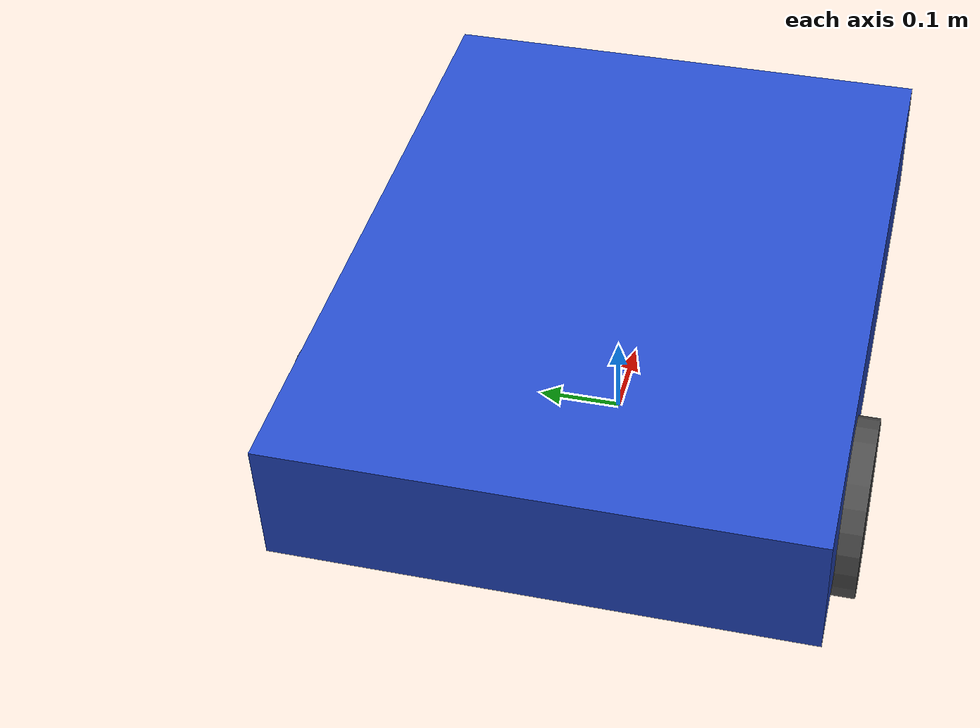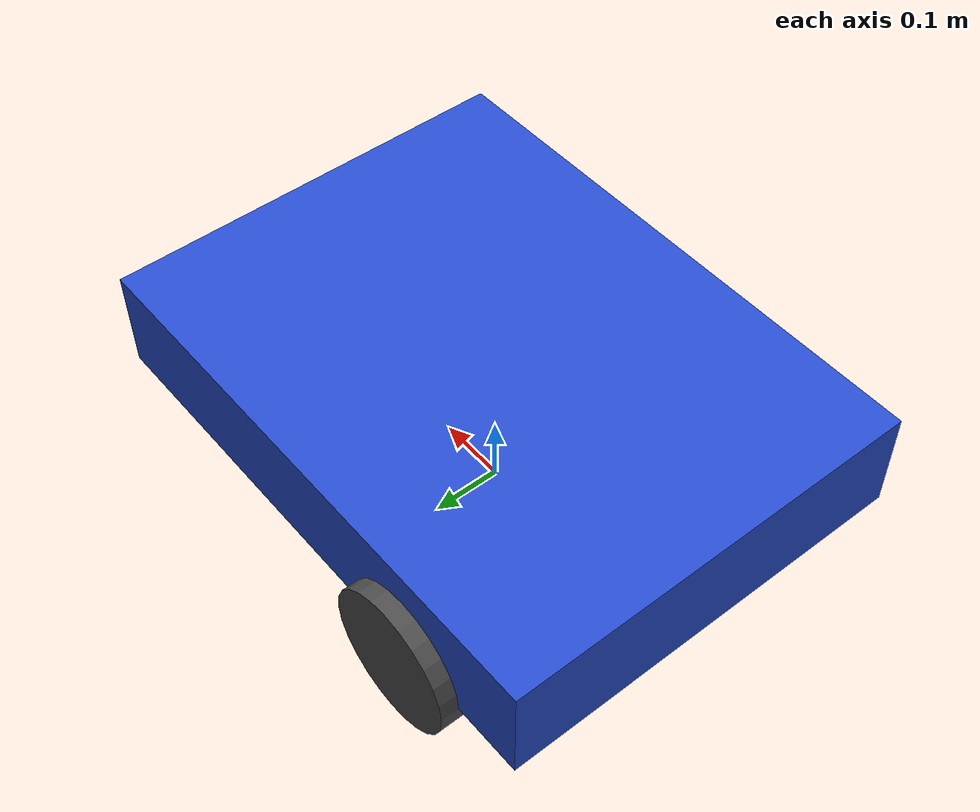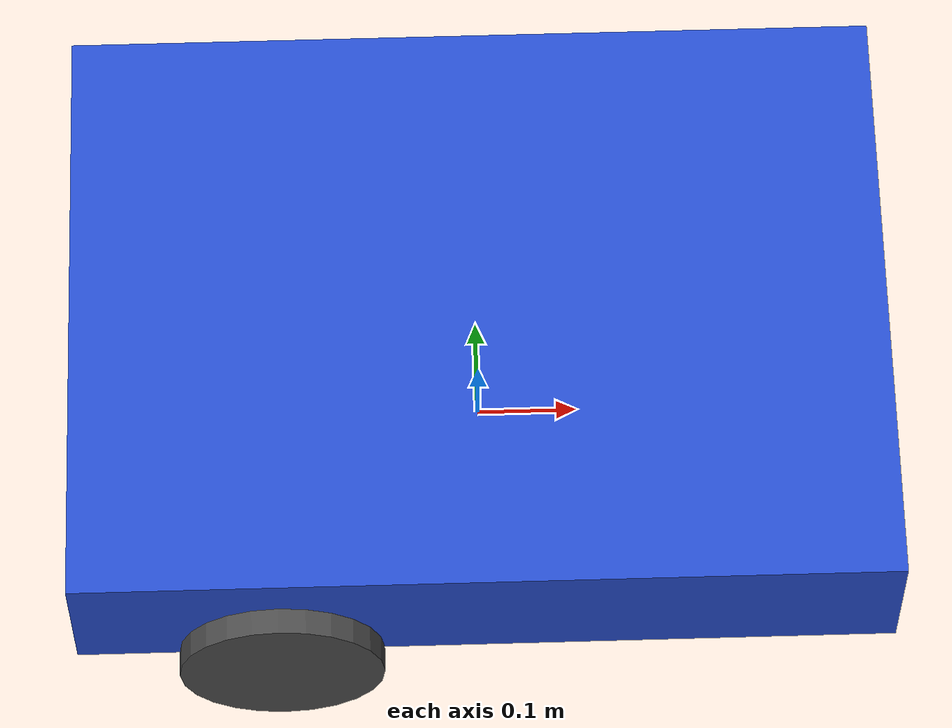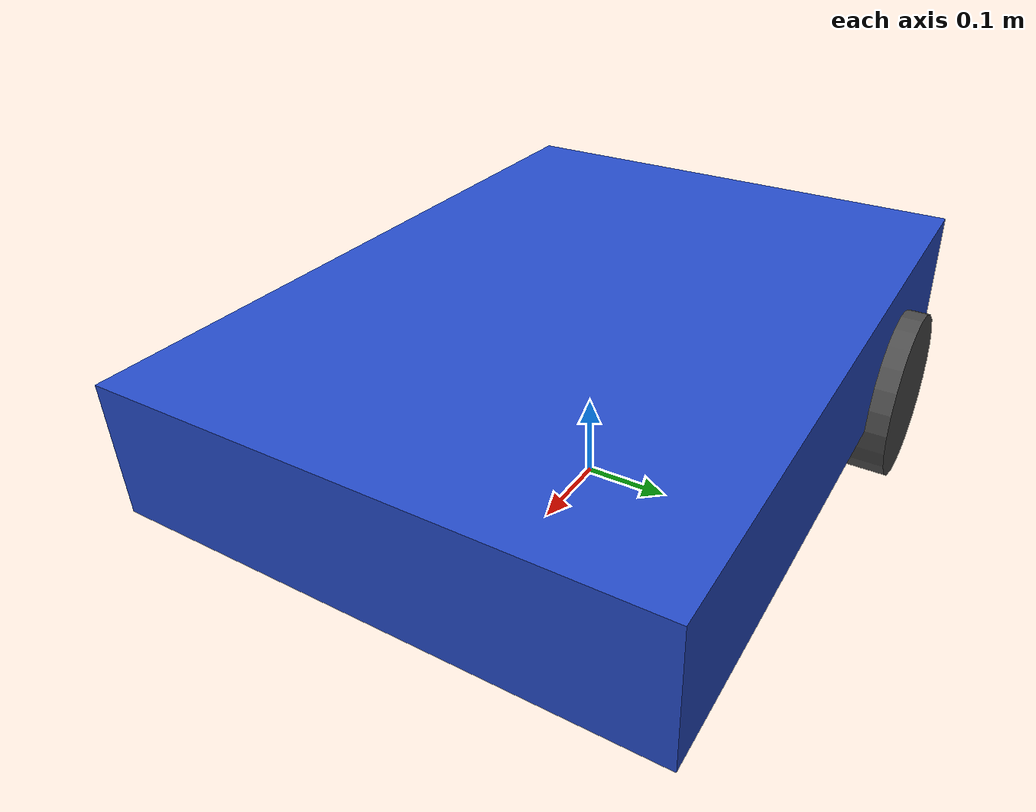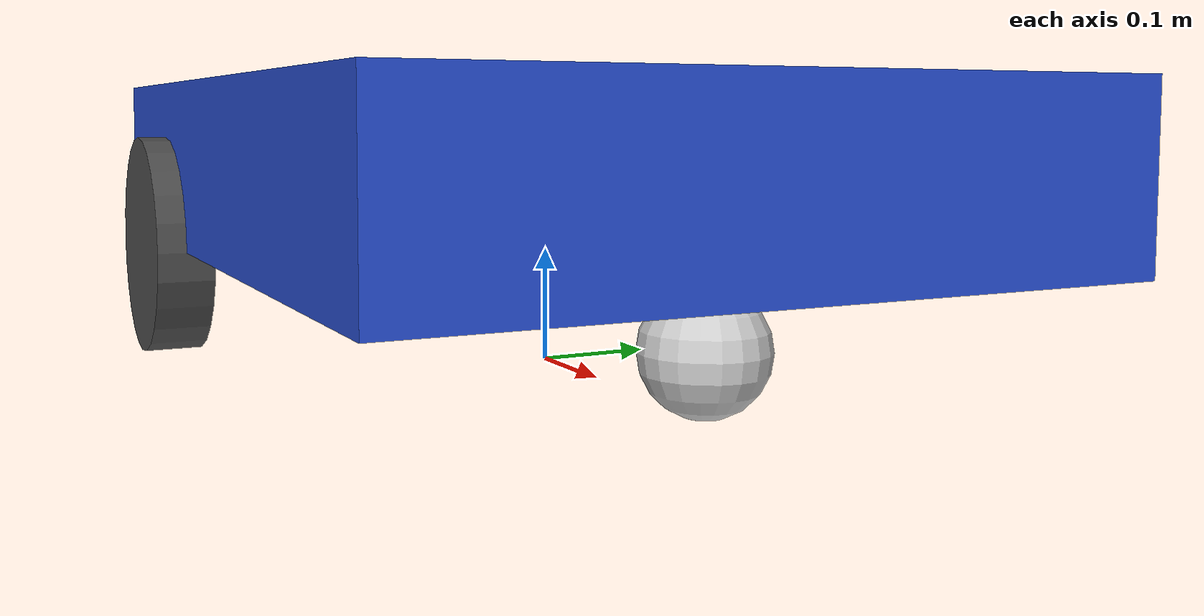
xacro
<?xml version="1.0"?>
<robot xmlns:xacro="http://www.ros.org/wiki/xacro">

  <!-- Properties -->
  <xacro:property name="chassis_length" value="0.8"/>
  <xacro:property name="chassis_width" value="0.6"/>
  <xacro:property name="chassis_height" value="0.15"/>
  <xacro:property name="chassis_mass" value="20.0"/>

  <xacro:property name="wheel_radius" value="0.1"/>
  <xacro:property name="wheel_width" value="0.05"/>
  <xacro:property name="wheel_mass" value="1.0"/>
  <xacro:property name="track_width" value="0.55"/>

  <xacro:property name="caster_radius" value="0.05"/>
  <xacro:property name="caster_mass" value="0.5"/>

  <!-- Inertia macros -->
  <xacro:macro name="box_inertia" params="m x y z">
    <inertial>
      <mass value="${m}"/>
      <inertia ixx="${m*(y*y+z*z)/12}" ixy="0" ixz="0"
               iyy="${m*(x*x+z*z)/12}" iyz="0"
               izz="${m*(x*x+y*y)/12}"/>
    </inertial>
  </xacro:macro>

  <xacro:macro name="cylinder_inertia" params="m r l">
    <inertial>
      <mass value="${m}"/>
      <inertia ixx="${m*(3*r*r+l*l)/12}" ixy="0" ixz="0"
               iyy="${m*(3*r*r+l*l)/12}" iyz="0"
               izz="${m*r*r/2}"/>
    </inertial>
  </xacro:macro>

  <xacro:macro name="sphere_inertia" params="m r">
    <inertial>
      <mass value="${m}"/>
      <inertia ixx="${2*m*r*r/5}" ixy="0" ixz="0"
               iyy="${2*m*r*r/5}" iyz="0"
               izz="${2*m*r*r/5}"/>
    </inertial>
  </xacro:macro>

  <!-- Base footprint (on the ground) -->
  <link name="base_footprint"/>

  <joint name="base_joint" type="fixed">
    <parent link="base_footprint"/>
    <child link="base_link"/>
    <origin xyz="0 0 ${wheel_radius}" rpy="0 0 0"/>
  </joint>

  <!-- Chassis -->
  <link name="base_link">
    <visual>
      <geometry>
        <box size="${chassis_length} ${chassis_width} ${chassis_height}"/>
      </geometry>
      <origin xyz="0 0 ${chassis_height/2}" rpy="0 0 0"/>
      <material name="blue"/>
    </visual>
    <collision>
      <geometry>
        <box size="${chassis_length} ${chassis_width} ${chassis_height}"/>
      </geometry>
      <origin xyz="0 0 ${chassis_height/2}" rpy="0 0 0"/>
    </collision>
    <xacro:box_inertia m="${chassis_mass}" x="${chassis_length}" y="${chassis_width}" z="${chassis_height}"/>
  </link>

  <!-- Wheel macro -->
  <xacro:macro name="drive_wheel" params="prefix y_offset">
    <link name="${prefix}_wheel_link">
      <visual>
        <geometry>
          <cylinder radius="${wheel_radius}" length="${wheel_width}"/>
        </geometry>
        <material name="dark_grey"/>
      </visual>
      <collision>
        <geometry>
          <cylinder radius="${wheel_radius}" length="${wheel_width}"/>
        </geometry>
        <surface>
          <friction>
            <ode>
              <mu>1.0</mu>
              <mu2>1.0</mu2>
            </ode>
          </friction>
        </surface>
      </collision>
      <xacro:cylinder_inertia m="${wheel_mass}" r="${wheel_radius}" l="${wheel_width}"/>
    </link>

    <joint name="${prefix}_wheel_joint" type="continuous">
      <parent link="base_link"/>
      <child link="${prefix}_wheel_link"/>
      <origin xyz="${-chassis_length/4} ${y_offset} 0" rpy="${-pi/2} 0 0"/>
      <axis xyz="0 0 1"/>
      <dynamics damping="0.1" friction="0.1"/>
    </joint>

    <!-- collision sensors on wheels to detect the lane line crossing-->
    <gazebo reference="${prefix}_wheel_link">
      <sensor name="${prefix}_wheel_sensor" type="contact">
        <topic>/${prefix}_wheel_sensor</topic>
        <always_on>true</always_on>
        <update_rate>50</update_rate>
        <contact>
          <collision>${prefix}_wheel_link_collision</collision>
        </contact>
      </sensor>
    </gazebo>
  </xacro:macro>

  <xacro:drive_wheel prefix="left" y_offset="${track_width/2 + wheel_width/2}"/>
  <xacro:drive_wheel prefix="right" y_offset="${-(track_width/2 + wheel_width/2)}"/>

  <!-- Front caster -->
  <link name="caster_link">
    <visual>
      <geometry>
        <sphere radius="${caster_radius}"/>
      </geometry>
      <material name="light_grey"/>
    </visual>
    <collision>
      <geometry>
        <sphere radius="${caster_radius}"/>
      </geometry>
      <surface>
        <friction>
          <ode>
            <mu>0.01</mu>
            <mu2>0.01</mu2>
          </ode>
        </friction>
      </surface>
    </collision>
    <xacro:sphere_inertia m="${caster_mass}" r="${caster_radius}"/>
  </link>

  <joint name="caster_joint" type="continuous">
    <parent link="base_link"/>
    <child link="caster_link"/>
    <origin xyz="${chassis_length/3} 0 ${-(wheel_radius - caster_radius)}" rpy="0 0 0"/>
    <axis xyz="0 1 0"/> </joint>

  <gazebo reference="caster_link">
    <sensor name="caster_sensor" type="contact">
      <topic>/caster_sensor</topic>
      <always_on>true</always_on>
      <update_rate>50</update_rate>
      <contact>
        <collision>caster_link_collision</collision>
      </contact>
    </sensor>
  </gazebo>

  <!--Collision sensor on chassis to detect object collision-->
  <gazebo reference="base_link">
    <sensor name="chassis_sensor" type="contact">
      <topic>/chassis_sensor</topic>
      <always_on>true</always_on>
      <update_rate>50</update_rate>
      <contact>
        <collision>base_footprint_fixed_joint_lump__base_link_collision</collision>
      </contact>
    </sensor>
  </gazebo>

</robot>
